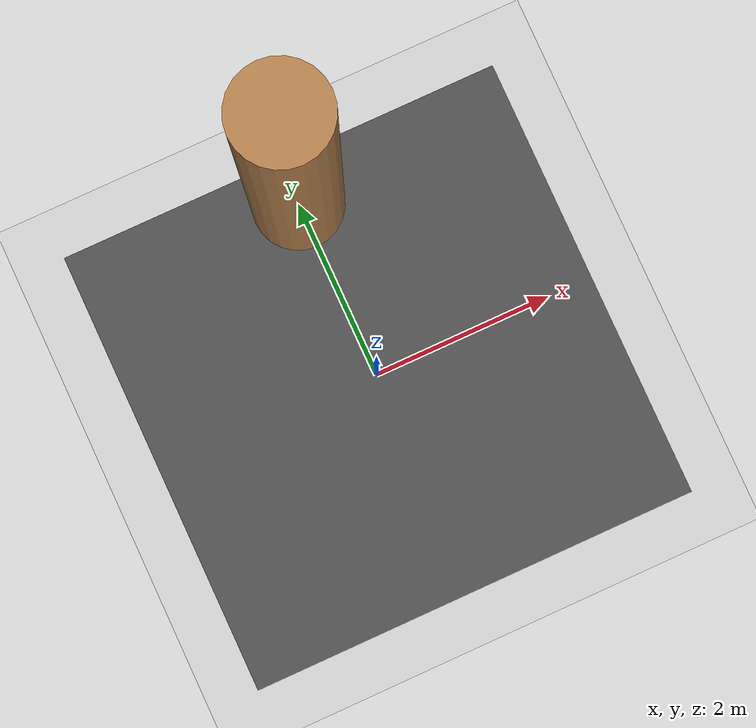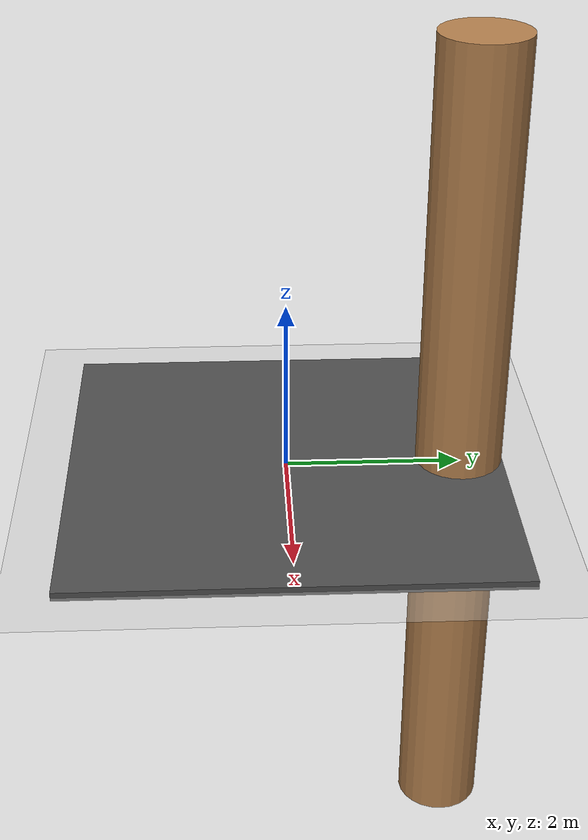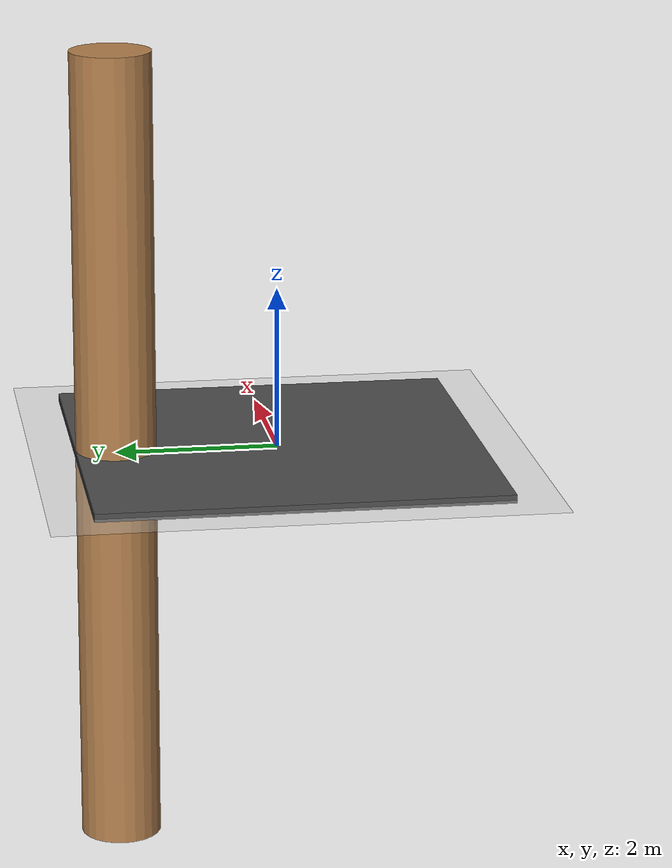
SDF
<sdf version="1.5">
 <world name="default">
  <light name="sun" type="directional">
   <pose>0 0 10 0 -0 0</pose>
   <diffuse>0.8 0.8 0.8 1</diffuse>
   <specular>0.2 0.2 0.2 1</specular>
   <attenuation>
    <range>1000</range>
    <constant>0.9</constant>
    <linear>0.01</linear>
    <quadratic>0.001</quadratic>
   </attenuation>
   <direction>-0.5 0.1 -0.9</direction>
  </light>
  <model name="ground_plane">
   <static>1</static>
   <link name="link">
    <collision name="collision">
     <geometry><plane><normal>0 0 1</normal><size>100 100</size></plane></geometry>
     <surface><friction><ode><mu>100</mu><mu2>50</mu2></ode></friction></surface>
    </collision>
    <visual name="visual">
     <cast_shadows>0</cast_shadows>
     <geometry><plane><normal>0 0 1</normal><size>100 100</size></plane></geometry>
     <material>
      <script><uri>file://media/materials/scripts/gazebo.material</uri><name>Gazebo/Grey</name></script>
     </material>
    </visual>
   </link>
  </model>
  <physics name="default_physics" default="0" type="ode">
   <max_step_size>0.001</max_step_size>
   <real_time_factor>1</real_time_factor>
   <real_time_update_rate>1000</real_time_update_rate>
   <gravity>0 0 -9.8</gravity>
   <magnetic_field>6e-06 2.3e-05 -4.2e-05</magnetic_field>
  </physics>
  <scene><ambient>0.4 0.4 0.4 1</ambient><background>0.7 0.7 0.7 1</background><shadows>1</shadows></scene>
  <spherical_coordinates>
   <surface_model>EARTH_WGS84</surface_model>
   <latitude_deg>0</latitude_deg>
   <longitude_deg>0</longitude_deg>
   <elevation>0</elevation>
   <heading_deg>0</heading_deg>
  </spherical_coordinates>
  <model name="asphalt_plane">
   <static>1</static>
   <link name="link">
    <collision name="collision"><geometry><box><size>20 20 0.1</size></box></geometry></collision>
    <visual name="visual">
     <cast_shadows>0</cast_shadows>
     <geometry><box><size>5 5 0.1</size></box></geometry>
     <material>
      <script>
       <uri>model://asphalt_plane/materials/scripts</uri>
       <uri>model://asphalt_plane/materials/textures</uri>
       <name>vrc/asphalt</name>
      </script>
     </material>
    </visual>
   </link>
  </model>
  <model name="tree">
   <link name="link">
    <inertial>
     <mass>1</mass>
     <inertia><ixx>0.145833</ixx><ixy>0</ixy><ixz>0</ixz><iyy>0.145833</iyy><iyz>0</iyz><izz>0.125</izz></inertia>
    </inertial>
    <visual name="visual">
     <geometry><cylinder><radius>0.5</radius><length>10</length></cylinder></geometry>
     <material>
      <script><name>Gazebo/WoodFloor</name><uri>file://media/materials/scripts/gazebo.material</uri></script>
      <ambient>0.3 0.3 0.3 1</ambient>
      <diffuse>0.7 0.7 0.7 1</diffuse>
      <specular>0.01 0.01 0.01 1</specular>
      <emissive>0 0 0 1</emissive>
      <shader type="vertex"><normal_map>__default__</normal_map></shader>
     </material>
    </visual>
    <collision name="collision">
     <geometry><cylinder><radius>0.5</radius><length>10</length></cylinder></geometry>
     <surface>
      <friction><ode><mu>1</mu><mu2>1</mu2><fdir1>0 0 0</fdir1><slip1>0</slip1><slip2>0</slip2></ode></friction>
      <bounce><restitution_coefficient>0</restitution_coefficient><threshold>1e+06</threshold></bounce>
      <contact>
       <collide_without_contact>0</collide_without_contact>
       <collide_without_contact_bitmask>1</collide_without_contact_bitmask>
       <collide_bitmask>1</collide_bitmask>
       <ode>
        <soft_cfm>0</soft_cfm>
        <soft_erp>0.2</soft_erp>
        <kp>1e+13</kp>
        <kd>1</kd>
        <max_vel>0.01</max_vel>
        <min_depth>0</min_depth>
       </ode>
       <bullet>
        <split_impulse>1</split_impulse>
        <split_impulse_penetration_threshold>-0.01</split_impulse_penetration_threshold>
        <soft_cfm>0</soft_cfm>
        <soft_erp>0.2</soft_erp>
        <kp>1e+13</kp>
        <kd>1</kd>
       </bullet>
      </contact>
     </surface>
    </collision>
   </link>
   <static>1</static>
   <pose>0 2 0 0 -0 0</pose>
  </model>
 </world>
</sdf>
